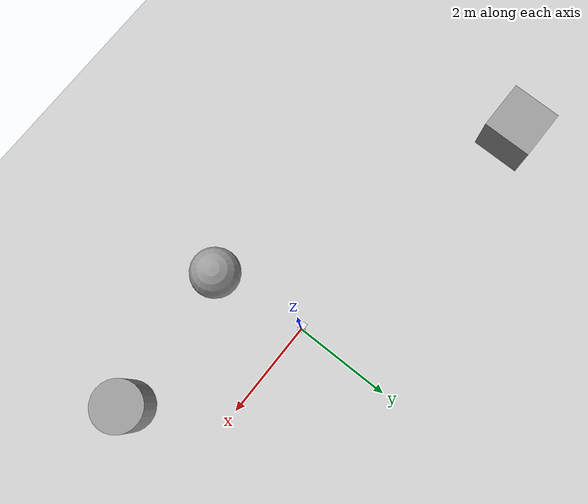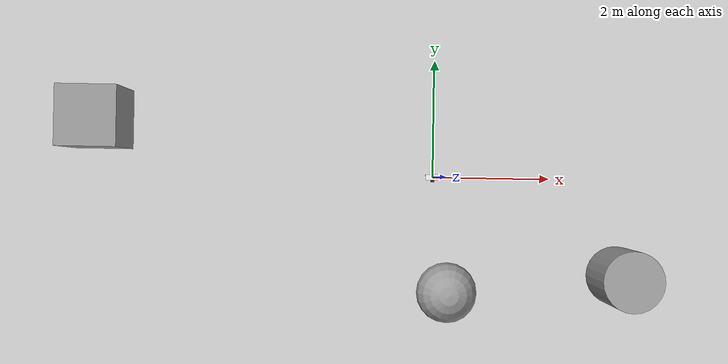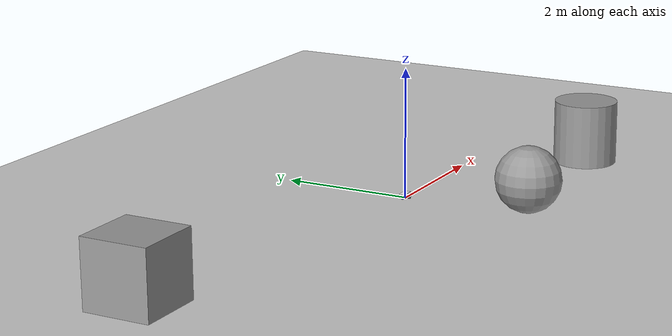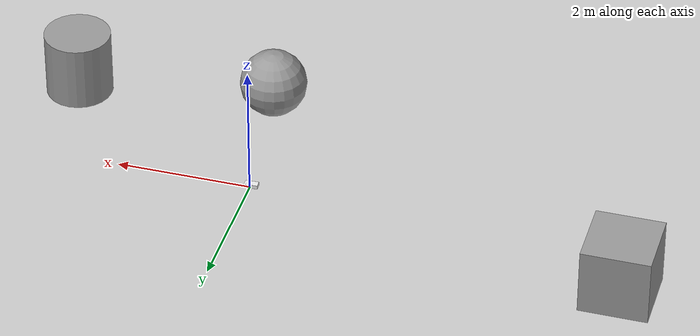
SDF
<sdf version="1.7">
 <world name="default">
  <light name="sun" type="directional">
   <pose>0 0 10 0 -0 0</pose>
   <diffuse>0.8 0.8 0.8 1</diffuse>
   <specular>0.2 0.2 0.2 1</specular>
   <attenuation>
    <range>1000</range>
    <constant>0.9</constant>
    <linear>0.01</linear>
    <quadratic>0.001</quadratic>
   </attenuation>
   <direction>-0.5 0.1 -0.9</direction>
   <spot><inner_angle>0</inner_angle><outer_angle>0</outer_angle><falloff>0</falloff></spot>
  </light>
  <model name="ground_plane">
   <static>1</static>
   <link name="link">
    <collision name="collision">
     <geometry><plane><normal>0 0 1</normal><size>100 100</size></plane></geometry>
     <surface><friction><ode><mu>100</mu><mu2>50</mu2></ode></friction></surface>
    </collision>
    <visual name="visual">
     <cast_shadows>0</cast_shadows>
     <geometry><plane><normal>0 0 1</normal><size>100 100</size></plane></geometry>
     <material>
      <script><uri>file://media/materials/scripts/gazebo.material</uri><name>Gazebo/Grey</name></script>
     </material>
    </visual>
   </link>
  </model>
  <gravity>0 0 -9.8</gravity>
  <magnetic_field>6e-06 2.3e-05 -4.2e-05</magnetic_field>
  <atmosphere type="adiabatic"/>
  <physics type="ode">
   <max_step_size>0.001</max_step_size>
   <real_time_factor>1</real_time_factor>
   <real_time_update_rate>1000</real_time_update_rate>
  </physics>
  <scene><ambient>0.4 0.4 0.4 1</ambient><background>0.7 0.7 0.7 1</background><shadows>1</shadows></scene>
  <audio><device>default</device></audio>
  <spherical_coordinates>
   <surface_model>EARTH_WGS84</surface_model>
   <latitude_deg>0</latitude_deg>
   <longitude_deg>0</longitude_deg>
   <elevation>0</elevation>
   <heading_deg>0</heading_deg>
  </spherical_coordinates>
  <model name="with_robot">
   <link name="base_link">
    <inertial>
     <pose>-0.031667 0 0.025 0 -0 0</pose>
     <mass>0.6</mass>
     <inertia>
      <ixx>0.000677667</ixx>
      <ixy>0</ixy>
      <ixz>-0.000175</ixz>
      <iyy>0.002336</iyy>
      <iyz>0</iyz>
      <izz>0.00252767</izz>
     </inertia>
    </inertial>
    <collision name="base_link_fixed_joint_lump__body_collision">
     <pose>-0.02 0 0.03 0 -0 0</pose>
     <geometry><box><size>0.2 0.1 0.06</size></box></geometry>
    </collision>
    <collision name="base_link_fixed_joint_lump__caster_wheel_collision_1">
     <pose>-0.09 0 0 0 -0 0</pose>
     <geometry><sphere><radius>0.03</radius></sphere></geometry>
     <surface><friction><ode><mu>0.001</mu><mu2>0.001</mu2></ode></friction></surface>
    </collision>
    <visual name="base_link_fixed_joint_lump__body_visual">
     <pose>-0.02 0 0.03 0 -0 0</pose>
     <geometry><box><size>0.2 0.1 0.06</size></box></geometry>
     <material>
      <script><name>Gazebo/White</name><uri>file://media/materials/scripts/gazebo.material</uri></script>
     </material>
    </visual>
    <visual name="base_link_fixed_joint_lump__caster_wheel_visual_1">
     <pose>-0.09 0 0 0 -0 0</pose>
     <geometry><sphere><radius>0.03</radius></sphere></geometry>
     <material>
      <script><name>Gazebo/Blue</name><uri>file://media/materials/scripts/gazebo.material</uri></script>
     </material>
    </visual>
   </link>
   <joint name="left_wheel_joint" type="revolute">
    <pose relative_to="base_link">0 0.065 0 -1.5708 0 0</pose>
    <parent>base_link</parent>
    <child>left_wheel</child>
    <axis>
     <xyz>0 0 1</xyz>
     <limit><lower>-1e+16</lower><upper>1e+16</upper></limit>
     <dynamics><spring_reference>0</spring_reference><spring_stiffness>0</spring_stiffness></dynamics>
    </axis>
   </joint>
   <link name="left_wheel">
    <pose relative_to="left_wheel_joint">0 0 0 0 -0 0</pose>
    <inertial>
     <mass>0.1</mass>
     <inertia><ixx>3e-05</ixx><ixy>0</ixy><ixz>0</ixz><iyy>3e-05</iyy><iyz>0</iyz><izz>4.5e-05</izz></inertia>
    </inertial>
    <collision name="left_wheel_collision">
     <geometry><cylinder><length>0.03</length><radius>0.03</radius></cylinder></geometry>
    </collision>
    <visual name="left_wheel_visual">
     <geometry><cylinder><length>0.03</length><radius>0.03</radius></cylinder></geometry>
     <material>
      <script><name>Gazebo/Black</name><uri>file://media/materials/scripts/gazebo.material</uri></script>
     </material>
    </visual>
   </link>
   <joint name="right_wheel_joint" type="revolute">
    <pose relative_to="base_link">0 -0.065 0 1.5708 -0 0</pose>
    <parent>base_link</parent>
    <child>right_wheel</child>
    <axis>
     <xyz>0 0 -1</xyz>
     <limit><lower>-1e+16</lower><upper>1e+16</upper></limit>
     <dynamics><spring_reference>0</spring_reference><spring_stiffness>0</spring_stiffness></dynamics>
    </axis>
   </joint>
   <link name="right_wheel">
    <pose relative_to="right_wheel_joint">0 0 0 0 -0 0</pose>
    <inertial>
     <mass>0.1</mass>
     <inertia><ixx>3e-05</ixx><ixy>0</ixy><ixz>0</ixz><iyy>3e-05</iyy><iyz>0</iyz><izz>4.5e-05</izz></inertia>
    </inertial>
    <collision name="right_wheel_collision">
     <geometry><cylinder><length>0.03</length><radius>0.03</radius></cylinder></geometry>
    </collision>
    <visual name="right_wheel_visual">
     <geometry><cylinder><length>0.03</length><radius>0.03</radius></cylinder></geometry>
     <material>
      <script><name>Gazebo/Black</name><uri>file://media/materials/scripts/gazebo.material</uri></script>
     </material>
    </visual>
   </link>
   <static>0</static>
   <plugin name="diff_drive" filename="libgazebo_ros_diff_drive.so">
    <left_joint>left_wheel_joint</left_joint>
    <right_joint>right_wheel_joint</right_joint>
    <wheel_separation>0.35</wheel_separation>
    <wheel_diameter>0.1</wheel_diameter>
    <max_wheel_torque>200</max_wheel_torque>
    <max_wheel_acceleration>10.0</max_wheel_acceleration>
    <odometry_frame>odom</odometry_frame>
    <robot_base_frame>base_link</robot_base_frame>
    <publish_odom>1</publish_odom>
    <publish_odom_tf>1</publish_odom_tf>
    <publish_wheel_tf>1</publish_wheel_tf>
   </plugin>
   <pose>-0.007761 0.000114 0.03 -0 -1e-06 0.029097</pose>
  </model>
  <model name="unit_box">
   <pose>-5.67117 0.896274 0.499995 0 1e-05 0</pose>
   <link name="link">
    <inertial>
     <mass>1</mass>
     <inertia>
      <ixx>0.166667</ixx>
      <ixy>0</ixy>
      <ixz>0</ixz>
      <iyy>0.166667</iyy>
      <iyz>0</iyz>
      <izz>0.166667</izz>
     </inertia>
    </inertial>
    <collision name="collision"><geometry><box><size>1 1 1</size></box></geometry></collision>
    <visual name="visual">
     <geometry><box><size>1 1 1</size></box></geometry>
     <material>
      <script><name>Gazebo/Grey</name><uri>file://media/materials/scripts/gazebo.material</uri></script>
     </material>
    </visual>
   </link>
  </model>
  <model name="unit_sphere">
   <pose>0.211896 -1.91144 0.5 0 -0 0</pose>
   <link name="link">
    <inertial>
     <mass>1</mass>
     <inertia><ixx>0.1</ixx><ixy>0</ixy><ixz>0</ixz><iyy>0.1</iyy><iyz>0</iyz><izz>0.1</izz></inertia>
    </inertial>
    <collision name="collision"><geometry><sphere><radius>0.5</radius></sphere></geometry></collision>
    <visual name="visual">
     <geometry><sphere><radius>0.5</radius></sphere></geometry>
     <material>
      <script><name>Gazebo/Grey</name><uri>file://media/materials/scripts/gazebo.material</uri></script>
     </material>
    </visual>
   </link>
  </model>
  <model name="unit_cylinder">
   <pose>3.16722 -1.6331 0.499997 3e-06 4e-06 -0</pose>
   <link name="link">
    <inertial>
     <mass>1</mass>
     <inertia><ixx>0.145833</ixx><ixy>0</ixy><ixz>0</ixz><iyy>0.145833</iyy><iyz>0</iyz><izz>0.125</izz></inertia>
    </inertial>
    <collision name="collision">
     <geometry><cylinder><radius>0.5</radius><length>1</length></cylinder></geometry>
    </collision>
    <visual name="visual">
     <geometry><cylinder><radius>0.5</radius><length>1</length></cylinder></geometry>
     <material>
      <script><name>Gazebo/Grey</name><uri>file://media/materials/scripts/gazebo.material</uri></script>
     </material>
    </visual>
   </link>
  </model>
 </world>
</sdf>
